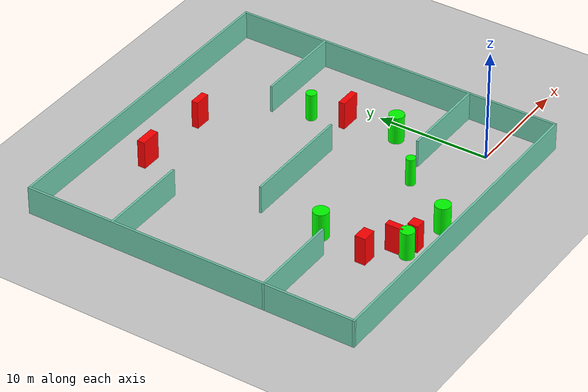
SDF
<sdf version="1.7">
 <world name="default">
  <light name="sun" type="directional">
   <pose>0 0 10 0 -0 0</pose>
   <diffuse>0.8 0.8 0.8 1</diffuse>
   <specular>0.2 0.2 0.2 1</specular>
   <attenuation>
    <range>1000</range>
    <constant>0.9</constant>
    <linear>0.01</linear>
    <quadratic>0.001</quadratic>
   </attenuation>
   <direction>-0.5 0.1 -0.9</direction>
   <spot><inner_angle>0</inner_angle><outer_angle>0</outer_angle><falloff>0</falloff></spot>
  </light>
  <model name="ground_plane">
   <static>1</static>
   <link name="link">
    <collision name="collision">
     <geometry><plane><normal>0 0 1</normal><size>100 100</size></plane></geometry>
     <surface>
      <contact><collide_bitmask>65535</collide_bitmask></contact>
      <friction><ode><mu>100</mu><mu2>50</mu2></ode></friction>
     </surface>
    </collision>
    <visual name="visual">
     <cast_shadows>0</cast_shadows>
     <geometry><plane><normal>0 0 1</normal><size>100 100</size></plane></geometry>
     <material>
      <script><uri>file://media/materials/scripts/gazebo.material</uri><name>Gazebo/Grey</name></script>
     </material>
    </visual>
   </link>
  </model>
  <gravity>0 0 -9.8</gravity>
  <magnetic_field>6e-06 2.3e-05 -4.2e-05</magnetic_field>
  <atmosphere type="adiabatic"/>
  <physics type="ode">
   <max_step_size>0.001</max_step_size>
   <real_time_factor>1</real_time_factor>
   <real_time_update_rate>1000</real_time_update_rate>
  </physics>
  <scene><ambient>0.4 0.4 0.4 1</ambient><background>0.7 0.7 0.7 1</background><shadows>1</shadows></scene>
  <spherical_coordinates>
   <surface_model>EARTH_WGS84</surface_model>
   <latitude_deg>0</latitude_deg>
   <longitude_deg>0</longitude_deg>
   <elevation>0</elevation>
   <heading_deg>0</heading_deg>
  </spherical_coordinates>
  <model name="my_base_walls">
   <link name="Wall_10">
    <collision name="Wall_10_Collision">
     <geometry><box><size>8.2 0.2 2.5</size></box></geometry>
     <pose>0 0 1.25 0 -0 0</pose>
    </collision>
    <visual name="Wall_10_Visual">
     <pose>0 0 1.25 0 -0 0</pose>
     <geometry><box><size>8.2 0.2 2.5</size></box></geometry>
     <material>
      <script><uri>file://media/materials/scripts/gazebo.material</uri><name>Gazebo/Grey</name></script>
      <ambient>0.435294 0.796078 0.67451 1</ambient>
     </material>
     <meta><layer>0</layer></meta>
    </visual>
    <pose>-11 -7 0 0 -0 0</pose>
   </link>
   <link name="Wall_12">
    <collision name="Wall_12_Collision">
     <geometry><box><size>8.2 0.2 2.5</size></box></geometry>
     <pose>0 0 1.25 0 -0 0</pose>
    </collision>
    <visual name="Wall_12_Visual">
     <pose>0 0 1.25 0 -0 0</pose>
     <geometry><box><size>8.2 0.2 2.5</size></box></geometry>
     <material>
      <script><uri>file://media/materials/scripts/gazebo.material</uri><name>Gazebo/Grey</name></script>
      <ambient>0.435294 0.796078 0.67451 1</ambient>
     </material>
     <meta><layer>0</layer></meta>
    </visual>
    <pose>-11 7 0 0 -0 0</pose>
   </link>
   <link name="Wall_14">
    <collision name="Wall_14_Collision">
     <geometry><box><size>8.2 0.2 2.5</size></box></geometry>
     <pose>0 0 1.25 0 -0 0</pose>
    </collision>
    <visual name="Wall_14_Visual">
     <pose>0 0 1.25 0 -0 0</pose>
     <geometry><box><size>8.2 0.2 2.5</size></box></geometry>
     <material>
      <script><uri>file://media/materials/scripts/gazebo.material</uri><name>Gazebo/Grey</name></script>
      <ambient>0.435294 0.796078 0.67451 1</ambient>
     </material>
     <meta><layer>0</layer></meta>
    </visual>
    <pose>11 7 0 0 -0 3.14159</pose>
   </link>
   <link name="Wall_16">
    <collision name="Wall_16_Collision">
     <geometry><box><size>10.2 0.2 2.5</size></box></geometry>
     <pose>0 0 1.25 0 -0 0</pose>
    </collision>
    <visual name="Wall_16_Visual">
     <pose>0 0 1.25 0 -0 0</pose>
     <geometry><box><size>10.2 0.2 2.5</size></box></geometry>
     <material>
      <script><uri>file://media/materials/scripts/gazebo.material</uri><name>Gazebo/Grey</name></script>
      <ambient>0.435294 0.796078 0.67451 1</ambient>
     </material>
     <meta><layer>0</layer></meta>
    </visual>
    <pose>0 0 0 0 -0 3.14159</pose>
   </link>
   <link name="Wall_2">
    <collision name="Wall_2_Collision">
     <geometry><box><size>30.2 0.2 2.5</size></box></geometry>
     <pose>0 0 1.25 0 -0 0</pose>
    </collision>
    <visual name="Wall_2_Visual">
     <pose>0 0 1.25 0 -0 0</pose>
     <geometry><box><size>30.2 0.2 2.5</size></box></geometry>
     <material>
      <script><uri>file://media/materials/scripts/gazebo.material</uri><name>Gazebo/Grey</name></script>
      <ambient>0.435294 0.796078 0.67451 1</ambient>
     </material>
     <meta><layer>0</layer></meta>
    </visual>
    <pose>0 -15 0 0 -0 3.14159</pose>
   </link>
   <link name="Wall_3">
    <collision name="Wall_3_Collision">
     <geometry><box><size>30.2 0.2 2.5</size></box></geometry>
     <pose>0 0 1.25 0 -0 0</pose>
    </collision>
    <visual name="Wall_3_Visual">
     <pose>0 0 1.25 0 -0 0</pose>
     <geometry><box><size>30.2 0.2 2.5</size></box></geometry>
     <material>
      <script><uri>file://media/materials/scripts/gazebo.material</uri><name>Gazebo/Grey</name></script>
      <ambient>0.435294 0.796078 0.67451 1</ambient>
     </material>
     <meta><layer>0</layer></meta>
    </visual>
    <pose>-15 0 0 0 -0 1.5708</pose>
   </link>
   <link name="Wall_4">
    <collision name="Wall_4_Collision">
     <geometry><box><size>30.2 0.2 2.5</size></box></geometry>
     <pose>0 0 1.25 0 -0 0</pose>
    </collision>
    <visual name="Wall_4_Visual">
     <pose>0 0 1.25 0 -0 0</pose>
     <geometry><box><size>30.2 0.2 2.5</size></box></geometry>
     <material>
      <script><uri>file://media/materials/scripts/gazebo.material</uri><name>Gazebo/Grey</name></script>
      <ambient>0.435294 0.796078 0.67451 1</ambient>
     </material>
     <meta><layer>0</layer></meta>
    </visual>
    <pose>0 15 0 0 -0 0</pose>
   </link>
   <link name="Wall_6">
    <collision name="Wall_6_Collision">
     <geometry><box><size>30.2 0.2 2.5</size></box></geometry>
     <pose>0 0 1.25 0 -0 0</pose>
    </collision>
    <visual name="Wall_6_Visual">
     <pose>0 0 1.25 0 -0 0</pose>
     <geometry><box><size>30.2 0.2 2.5</size></box></geometry>
     <material>
      <script><uri>file://media/materials/scripts/gazebo.material</uri><name>Gazebo/Grey</name></script>
      <ambient>0.435294 0.796078 0.67451 1</ambient>
     </material>
     <meta><layer>0</layer></meta>
    </visual>
    <pose>15 0 0 0 -0 1.5708</pose>
   </link>
   <link name="Wall_8">
    <collision name="Wall_8_Collision">
     <geometry><box><size>8.2 0.2 2.5</size></box></geometry>
     <pose>0 0 1.25 0 -0 0</pose>
    </collision>
    <visual name="Wall_8_Visual">
     <pose>0 0 1.25 0 -0 0</pose>
     <geometry><box><size>8.2 0.2 2.5</size></box></geometry>
     <material>
      <script><uri>file://media/materials/scripts/gazebo.material</uri><name>Gazebo/Grey</name></script>
      <ambient>0.435294 0.796078 0.67451 1</ambient>
     </material>
     <meta><layer>0</layer></meta>
    </visual>
    <pose>11 -7 0 0 -0 3.14159</pose>
   </link>
   <static>1</static>
   <pose>-11 11 0 0 -0 0</pose>
  </model>
  <model name="cylinder1">
   <static>1</static>
   <link name="link">
    <inertial>
     <mass>1</mass>
     <inertia><ixx>0.5</ixx><ixy>0</ixy><ixz>0</ixz><iyy>0.5</iyy><iyz>0</iyz><izz>1</izz></inertia>
    </inertial>
    <collision name="collision">
     <geometry><cylinder><radius>0.6121073783754756</radius><length>2.5</length></cylinder></geometry>
    </collision>
    <visual name="visual">
     <geometry><cylinder><radius>0.6121073783754756</radius><length>2.5</length></cylinder></geometry>
     <material>
      <ambient>0 1 0 1</ambient>
      <diffuse>0 1 0 1</diffuse>
      <specular>0.1 0.1 0.1 1</specular>
      <emissive>0 0 0 0</emissive>
     </material>
    </visual>
   </link>
   <pose>-14.51452387646948 -1.5067198198192013 1.25 0 0 0</pose>
  </model>
  <model name="cylinder2">
   <static>1</static>
   <link name="link">
    <inertial>
     <mass>1</mass>
     <inertia><ixx>0.5</ixx><ixy>0</ixy><ixz>0</ixz><iyy>0.5</iyy><iyz>0</iyz><izz>1</izz></inertia>
    </inertial>
    <collision name="collision">
     <geometry><cylinder><radius>0.41275016654220653</radius><length>2.5</length></cylinder></geometry>
    </collision>
    <visual name="visual">
     <geometry><cylinder><radius>0.41275016654220653</radius><length>2.5</length></cylinder></geometry>
     <material>
      <ambient>0 1 0 1</ambient>
      <diffuse>0 1 0 1</diffuse>
      <specular>0.1 0.1 0.1 1</specular>
      <emissive>0 0 0 0</emissive>
     </material>
    </visual>
   </link>
   <pose>-6.308730815750936 3.2384827079789833 1.25 0 0 0</pose>
  </model>
  <model name="cylinder3">
   <static>1</static>
   <link name="link">
    <inertial>
     <mass>1</mass>
     <inertia><ixx>0.5</ixx><ixy>0</ixy><ixz>0</ixz><iyy>0.5</iyy><iyz>0</iyz><izz>1</izz></inertia>
    </inertial>
    <collision name="collision">
     <geometry><cylinder><radius>0.46195265106478645</radius><length>2.5</length></cylinder></geometry>
    </collision>
    <visual name="visual">
     <geometry><cylinder><radius>0.46195265106478645</radius><length>2.5</length></cylinder></geometry>
     <material>
      <ambient>0 1 0 1</ambient>
      <diffuse>0 1 0 1</diffuse>
      <specular>0.1 0.1 0.1 1</specular>
      <emissive>0 0 0 0</emissive>
     </material>
    </visual>
   </link>
   <pose>-3.0401821024975213 14.769792779015603 1.25 0 0 0</pose>
  </model>
  <model name="cylinder4">
   <static>1</static>
   <link name="link">
    <inertial>
     <mass>1</mass>
     <inertia><ixx>0.5</ixx><ixy>0</ixy><ixz>0</ixz><iyy>0.5</iyy><iyz>0</iyz><izz>1</izz></inertia>
    </inertial>
    <collision name="collision">
     <geometry><cylinder><radius>0.6791022798118006</radius><length>2.5</length></cylinder></geometry>
    </collision>
    <visual name="visual">
     <geometry><cylinder><radius>0.6791022798118006</radius><length>2.5</length></cylinder></geometry>
     <material>
      <ambient>0 1 0 1</ambient>
      <diffuse>0 1 0 1</diffuse>
      <specular>0.1 0.1 0.1 1</specular>
      <emissive>0 0 0 0</emissive>
     </material>
    </visual>
   </link>
   <pose>-16.042964620307757 5.384988750456033 1.25 0 0 0</pose>
  </model>
  <model name="cylinder5">
   <static>1</static>
   <link name="link">
    <inertial>
     <mass>1</mass>
     <inertia><ixx>0.5</ixx><ixy>0</ixy><ixz>0</ixz><iyy>0.5</iyy><iyz>0</iyz><izz>1</izz></inertia>
    </inertial>
    <collision name="collision">
     <geometry><cylinder><radius>0.6819325479044901</radius><length>2.5</length></cylinder></geometry>
    </collision>
    <visual name="visual">
     <geometry><cylinder><radius>0.6819325479044901</radius><length>2.5</length></cylinder></geometry>
     <material>
      <ambient>0 1 0 1</ambient>
      <diffuse>0 1 0 1</diffuse>
      <specular>0.1 0.1 0.1 1</specular>
      <emissive>0 0 0 0</emissive>
     </material>
    </visual>
   </link>
   <pose>-10.183192131939748 -2.0638950397574973 1.25 0 0 0</pose>
  </model>
  <model name="cylinder6">
   <static>1</static>
   <link name="link">
    <inertial>
     <mass>1</mass>
     <inertia><ixx>0.5</ixx><ixy>0</ixy><ixz>0</ixz><iyy>0.5</iyy><iyz>0</iyz><izz>1</izz></inertia>
    </inertial>
    <collision name="collision">
     <geometry><cylinder><radius>0.6653333349718978</radius><length>2.5</length></cylinder></geometry>
    </collision>
    <visual name="visual">
     <geometry><cylinder><radius>0.6653333349718978</radius><length>2.5</length></cylinder></geometry>
     <material>
      <ambient>0 1 0 1</ambient>
      <diffuse>0 1 0 1</diffuse>
      <specular>0.1 0.1 0.1 1</specular>
      <emissive>0 0 0 0</emissive>
     </material>
    </visual>
   </link>
   <pose>-1.823256236496082 7.348524483110959 1.25 0 0 0</pose>
  </model>
  <model name="box1">
   <static>1</static>
   <link name="link">
    <inertial>
     <mass>1</mass>
     <inertia><ixx>0.083</ixx><ixy>0</ixy><ixz>0</ixz><iyy>0.083</iyy><iyz>0</iyz><izz>0.083</izz></inertia>
    </inertial>
    <collision name="collision">
     <geometry><box><size>0.9253395340270181 0.9164879142630024 2.5</size></box></geometry>
    </collision>
    <visual name="visual">
     <geometry><box><size>0.9253395340270181 0.9164879142630024 2.5</size></box></geometry>
     <material>
      <ambient>1 0 0 1</ambient>
      <diffuse>1 0 0 1</diffuse>
      <specular>0.1 0.1 0.1 1</specular>
      <emissive>0 0 0 0</emissive>
     </material>
    </visual>
    <sensor name="my_contact" type="contact">
     <contact><collision>box_collision</collision><topic>__default_topic__</topic></contact>
    </sensor>
   </link>
   <pose>-13.29686000714725 -1.5261341653435472 1.25 0 0 0</pose>
  </model>
  <model name="box2">
   <static>1</static>
   <link name="link">
    <inertial>
     <mass>1</mass>
     <inertia><ixx>0.083</ixx><ixy>0</ixy><ixz>0</ixz><iyy>0.083</iyy><iyz>0</iyz><izz>0.083</izz></inertia>
    </inertial>
    <collision name="collision">
     <geometry><box><size>1.8868366932281375 0.5610072462357176 2.5</size></box></geometry>
    </collision>
    <visual name="visual">
     <geometry><box><size>1.8868366932281375 0.5610072462357176 2.5</size></box></geometry>
     <material>
      <ambient>1 0 0 1</ambient>
      <diffuse>1 0 0 1</diffuse>
      <specular>0.1 0.1 0.1 1</specular>
      <emissive>0 0 0 0</emissive>
     </material>
    </visual>
    <sensor name="my_contact" type="contact">
     <contact><collision>box_collision</collision><topic>__default_topic__</topic></contact>
    </sensor>
   </link>
   <pose>-1.9838385156670881 11.91731258738103 1.25 0 0 0</pose>
  </model>
  <model name="box3">
   <static>1</static>
   <link name="link">
    <inertial>
     <mass>1</mass>
     <inertia><ixx>0.083</ixx><ixy>0</ixy><ixz>0</ixz><iyy>0.083</iyy><iyz>0</iyz><izz>0.083</izz></inertia>
    </inertial>
    <collision name="collision">
     <geometry><box><size>1.2938263961614611 0.9419346373301473 2.5</size></box></geometry>
    </collision>
    <visual name="visual">
     <geometry><box><size>1.2938263961614611 0.9419346373301473 2.5</size></box></geometry>
     <material>
      <ambient>1 0 0 1</ambient>
      <diffuse>1 0 0 1</diffuse>
      <specular>0.1 0.1 0.1 1</specular>
      <emissive>0 0 0 0</emissive>
     </material>
    </visual>
    <sensor name="my_contact" type="contact">
     <contact><collision>box_collision</collision><topic>__default_topic__</topic></contact>
    </sensor>
   </link>
   <pose>-16.65583927680517 1.0070002763477506 1.25 0 0 0</pose>
  </model>
  <model name="box4">
   <static>1</static>
   <link name="link">
    <inertial>
     <mass>1</mass>
     <inertia><ixx>0.083</ixx><ixy>0</ixy><ixz>0</ixz><iyy>0.083</iyy><iyz>0</iyz><izz>0.083</izz></inertia>
    </inertial>
    <collision name="collision">
     <geometry><box><size>1.8496475924396796 0.6972180497162838 2.5</size></box></geometry>
    </collision>
    <visual name="visual">
     <geometry><box><size>1.8496475924396796 0.6972180497162838 2.5</size></box></geometry>
     <material>
      <ambient>1 0 0 1</ambient>
      <diffuse>1 0 0 1</diffuse>
      <specular>0.1 0.1 0.1 1</specular>
      <emissive>0 0 0 0</emissive>
     </material>
    </visual>
    <sensor name="my_contact" type="contact">
     <contact><collision>box_collision</collision><topic>__default_topic__</topic></contact>
    </sensor>
   </link>
   <pose>-15.356772592772854 22.331780414143296 1.25 0 0 0</pose>
  </model>
  <model name="box5">
   <static>1</static>
   <link name="link">
    <inertial>
     <mass>1</mass>
     <inertia><ixx>0.083</ixx><ixy>0</ixy><ixz>0</ixz><iyy>0.083</iyy><iyz>0</iyz><izz>0.083</izz></inertia>
    </inertial>
    <collision name="collision">
     <geometry><box><size>1.4835452333424253 0.6039569848770843 2.5</size></box></geometry>
    </collision>
    <visual name="visual">
     <geometry><box><size>1.4835452333424253 0.6039569848770843 2.5</size></box></geometry>
     <material>
      <ambient>1 0 0 1</ambient>
      <diffuse>1 0 0 1</diffuse>
      <specular>0.1 0.1 0.1 1</specular>
      <emissive>0 0 0 0</emissive>
     </material>
    </visual>
    <sensor name="my_contact" type="contact">
     <contact><collision>box_collision</collision><topic>__default_topic__</topic></contact>
    </sensor>
   </link>
   <pose>-8.651110773641397 21.94183709654918 1.25 0 0 0</pose>
  </model>
  <model name="box6">
   <static>1</static>
   <link name="link">
    <inertial>
     <mass>1</mass>
     <inertia><ixx>0.083</ixx><ixy>0</ixy><ixz>0</ixz><iyy>0.083</iyy><iyz>0</iyz><izz>0.083</izz></inertia>
    </inertial>
    <collision name="collision">
     <geometry><box><size>0.5833080544063284 1.5826140514725497 2.5</size></box></geometry>
    </collision>
    <visual name="visual">
     <geometry><box><size>0.5833080544063284 1.5826140514725497 2.5</size></box></geometry>
     <material>
      <ambient>1 0 0 1</ambient>
      <diffuse>1 0 0 1</diffuse>
      <specular>0.1 0.1 0.1 1</specular>
      <emissive>0 0 0 0</emissive>
     </material>
    </visual>
    <sensor name="my_contact" type="contact">
     <contact><collision>box_collision</collision><topic>__default_topic__</topic></contact>
    </sensor>
   </link>
   <pose>-14.451668067444947 -0.4388017165633644 1.25 0 0 0</pose>
  </model>
 </world>
</sdf>
